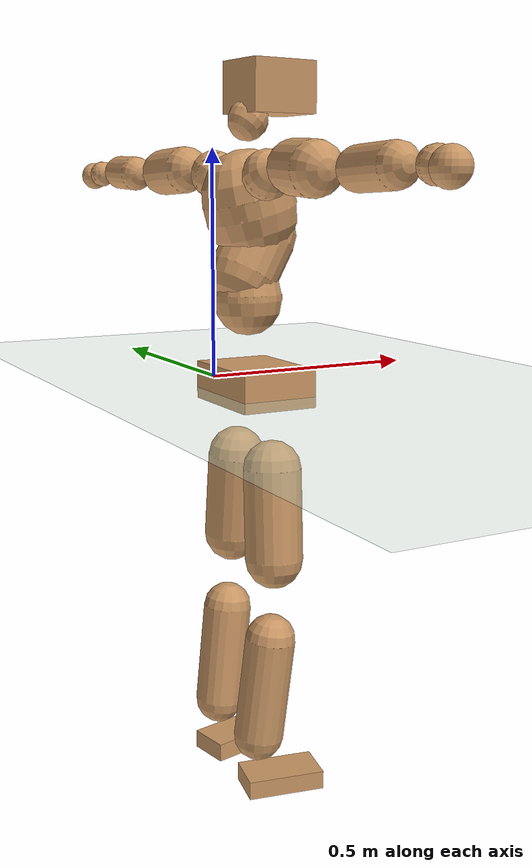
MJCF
<mujoco model="humanoid">
  <compiler coordinate="local" angle="radian"/>
  <default>
    <joint damping="0.0" armature="0.01" stiffness="0.0" limited="true"/>
    <geom conaffinity="1" condim="3" contype="7" margin="0.001" rgba="0.8 0.6 .4 1"/>
  </default>
  <asset>
    <texture type="skybox" builtin="gradient" rgb1=".4 .5 .6" rgb2="0 0 0" width="100" height="100"/>
    <texture builtin="flat" height="1278" mark="cross" markrgb="1 1 1" name="texgeom" random="0.01" rgb1="0.8 0.6 0.4" rgb2="0.8 0.6 0.4" type="cube" width="127"/>
    <texture builtin="checker" height="100" name="texplane" rgb1="0 0 0" rgb2="0.8 0.8 0.8" type="2d" width="100"/>
    <material name="MatPlane" reflectance="0.5" shininess="1" specular="1" texrepeat="60 60" texture="texplane"/>
    <material name="geom" texture="texgeom" texuniform="true"/>
  </asset>
  <worldbody>
    <light cutoff="100" diffuse="1 1 1" dir="-0 0 -1.3" directional="true" exponent="1" pos="0 0 1.3" specular=".1 .1 .1"/>
    <geom conaffinity="1" condim="3" name="floor" pos="0 0 0" rgba="0.8 0.9 0.8 1" size="100 100 .2" type="plane" material="MatPlane"/>
    <body name="Pelvis" pos="-0.0009 -0.2114 0.0278">
      <freejoint name="Pelvis"/>
      <geom type="box" contype="1" conaffinity="1" density="5359.375156" pos="-0.0058 -0.0000 -0.0125" size="0.082 0.1095 0.04" quat="1.0000 0.0000 0.0000 0.0023" name="Pelvis"/>
      <body name="L_Hip" pos="-0.008 0.0714 -0.0896">
        <joint name="L_Hip_x" type="hinge" pos="0 0 0" axis="1 0 0" stiffness="1600" damping="160" armature="0.02" range="-180.0000 180.0000"/>
        <joint name="L_Hip_y" type="hinge" pos="0 0 0" axis="0 1 0" stiffness="1600" damping="160" armature="0.02" range="-180.0000 180.0000"/>
        <joint name="L_Hip_z" type="hinge" pos="0 0 0" axis="0 0 1" stiffness="1600" damping="160" armature="0.02" range="-180.0000 180.0000"/>
        <geom type="capsule" contype="1" conaffinity="1" density="2040.816327" size="0.0613" fromto="-0.0017 0.0077 -0.0909 -0.0050 0.0230 -0.2733" name="L_Hip"/>
        <body name="L_Knee" pos="-0.0067 0.0307 -0.3642">
          <joint name="L_Knee_x" type="hinge" pos="0 0 0" axis="1 0 0" stiffness="1600" damping="160" armature="0.02" range="-180.0000 180.0000"/>
          <joint name="L_Knee_y" type="hinge" pos="0 0 0" axis="0 1 0" stiffness="1600" damping="160" armature="0.02" range="-180.0000 180.0000"/>
          <joint name="L_Knee_z" type="hinge" pos="0 0 0" axis="0 0 1" stiffness="1600" damping="160" armature="0.02" range="-180.0000 180.0000"/>
          <geom type="capsule" contype="1" conaffinity="1" density="1234.567901" size="0.0529" fromto="-0.0093 -0.0025 -0.0823 -0.0342 -0.0091 -0.3010" name="L_Knee"/>
          <body name="L_Ankle" pos="-0.0435 -0.0116 -0.3833">
            <joint name="L_Ankle_x" type="hinge" pos="0 0 0" axis="1 0 0" stiffness="1600" damping="160" armature="0.02" range="-180.0000 180.0000"/>
            <joint name="L_Ankle_y" type="hinge" pos="0 0 0" axis="0 1 0" stiffness="1600" damping="160" armature="0.02" range="-180.0000 180.0000"/>
            <joint name="L_Ankle_z" type="hinge" pos="0 0 0" axis="0 0 1" stiffness="1600" damping="160" armature="0.02" range="-180.0000 180.0000"/>
            <geom type="box" contype="1" conaffinity="1" density="1000" pos="0.0572 0.0117 -0.0273" size="0.082 0.0455 0.0201" quat="0.9949 0.0000 0.0000 0.1005" name="L_Ankle"/>
            <body name="L_Toe" pos="0.1144 0.0233 -0.0546">
              <joint name="L_Toe_x" type="hinge" pos="0 0 0" axis="1 0 0" stiffness="1000" damping="100" armature="0.02" range="-180.0000 180.0000"/>
              <joint name="L_Toe_y" type="hinge" pos="0 0 0" axis="0 1 0" stiffness="1000" damping="100" armature="0.02" range="-180.0000 180.0000"/>
              <joint name="L_Toe_z" type="hinge" pos="0 0 0" axis="0 0 1" stiffness="1000" damping="100" armature="0.02" range="-180.0000 180.0000"/>
              <geom type="box" contype="1" conaffinity="1" density="8384678.682056" pos="0.0000 0.0000 0.0267" size="0.0009 0.0023 0.001" quat="0.9943 0.0000 0.0000 0.1070" name="L_Toe"/>
            </body>
          </body>
        </body>
      </body>
      <body name="R_Hip" pos="-0.0048 -0.069 -0.089">
        <joint name="R_Hip_x" type="hinge" pos="0 0 0" axis="1 0 0" stiffness="1600" damping="160" armature="0.02" range="-180.0000 180.0000"/>
        <joint name="R_Hip_y" type="hinge" pos="0 0 0" axis="0 1 0" stiffness="1600" damping="160" armature="0.02" range="-180.0000 180.0000"/>
        <joint name="R_Hip_z" type="hinge" pos="0 0 0" axis="0 0 1" stiffness="1600" damping="160" armature="0.02" range="-180.0000 180.0000"/>
        <geom type="capsule" contype="1" conaffinity="1" density="2040.816327" size="0.0605" fromto="-0.0022 -0.0088 -0.0901 -0.0070 -0.0274 -0.2806" name="R_Hip"/>
        <body name="R_Knee" pos="-0.0092 -0.0362 -0.3707">
          <joint name="R_Knee_x" type="hinge" pos="0 0 0" axis="1 0 0" stiffness="1600" damping="160" armature="0.02" range="-180.0000 180.0000"/>
          <joint name="R_Knee_y" type="hinge" pos="0 0 0" axis="0 1 0" stiffness="1600" damping="160" armature="0.02" range="-180.0000 180.0000"/>
          <joint name="R_Knee_z" type="hinge" pos="0 0 0" axis="0 0 1" stiffness="1600" damping="160" armature="0.02" range="-180.0000 180.0000"/>
          <geom type="capsule" contype="1" conaffinity="1" density="1234.567901" size="0.0531" fromto="-0.0090 0.0030 -0.0826 -0.0329 0.0110 -0.3011" name="R_Knee"/>
          <body name="R_Ankle" pos="-0.0419 0.014 -0.3836">
            <joint name="R_Ankle_x" type="hinge" pos="0 0 0" axis="1 0 0" stiffness="1600" damping="160" armature="0.02" range="-180.0000 180.0000"/>
            <joint name="R_Ankle_y" type="hinge" pos="0 0 0" axis="0 1 0" stiffness="1600" damping="160" armature="0.02" range="-180.0000 180.0000"/>
            <joint name="R_Ankle_z" type="hinge" pos="0 0 0" axis="0 0 1" stiffness="1600" damping="160" armature="0.02" range="-180.0000 180.0000"/>
            <geom type="box" contype="1" conaffinity="1" density="999.999925" pos="0.0589 -0.0110 -0.0232" size="0.083 0.046 0.0198" quat="0.9957 0.0000 0.0000 -0.0923" name="R_Ankle"/>
            <body name="R_Toe" pos="0.1179 -0.022 -0.0464">
              <joint name="R_Toe_x" type="hinge" pos="0 0 0" axis="1 0 0" stiffness="1000" damping="100" armature="0.02" range="-180.0000 180.0000"/>
              <joint name="R_Toe_y" type="hinge" pos="0 0 0" axis="0 1 0" stiffness="1000" damping="100" armature="0.02" range="-180.0000 180.0000"/>
              <joint name="R_Toe_z" type="hinge" pos="0 0 0" axis="0 0 1" stiffness="1000" damping="100" armature="0.02" range="-180.0000 180.0000"/>
              <geom type="box" contype="1" conaffinity="1" density="8227773.345697" pos="0.0000 0.0000 0.0251" size="0.0009 0.0023 0.0011" quat="0.9966 0.0000 0.0000 -0.0827" name="R_Toe"/>
            </body>
          </body>
        </body>
      </body>
      <body name="Torso" pos="-0.0222 -0.0025 0.1033">
        <joint name="Torso_x" type="hinge" pos="0 0 0" axis="1 0 0" stiffness="2000" damping="200" armature="0.02" range="-180.0000 180.0000"/>
        <joint name="Torso_y" type="hinge" pos="0 0 0" axis="0 1 0" stiffness="2000" damping="200" armature="0.02" range="-180.0000 180.0000"/>
        <joint name="Torso_z" type="hinge" pos="0 0 0" axis="0 0 1" stiffness="2000" damping="200" armature="0.02" range="-180.0000 180.0000"/>
        <geom type="capsule" contype="1" conaffinity="1" density="2040.816327" size="0.0702" fromto="-0.0009 0.0020 0.0702 -0.0008 0.0016 0.0575" name="Torso"/>
        <body name="Spine" pos="-0.0017 0.0036 0.1277">
          <joint name="Spine_x" type="hinge" pos="0 0 0" axis="1 0 0" stiffness="2000" damping="200" armature="0.02" range="-180.0000 180.0000"/>
          <joint name="Spine_y" type="hinge" pos="0 0 0" axis="0 1 0" stiffness="2000" damping="200" armature="0.02" range="-180.0000 180.0000"/>
          <joint name="Spine_z" type="hinge" pos="0 0 0" axis="0 0 1" stiffness="2000" damping="200" armature="0.02" range="-180.0000 180.0000"/>
          <geom type="capsule" contype="1" conaffinity="1" density="2040.816327" size="0.0709" fromto="0.0350 0.0025 0.0616 -0.0071 -0.0005 -0.0126" name="Spine"/>
          <body name="Chest" pos="0.0279 0.002 0.0491">
            <joint name="Chest_x" type="hinge" pos="0 0 0" axis="1 0 0" stiffness="2000" damping="200" armature="0.02" range="-180.0000 180.0000"/>
            <joint name="Chest_y" type="hinge" pos="0 0 0" axis="0 1 0" stiffness="2000" damping="200" armature="0.02" range="-180.0000 180.0000"/>
            <joint name="Chest_z" type="hinge" pos="0 0 0" axis="0 0 1" stiffness="2000" damping="200" armature="0.02" range="-180.0000 180.0000"/>
            <geom type="capsule" contype="1" conaffinity="1" density="2040.816327" size="0.0944" fromto="-0.0264 -0.0008 0.0906 -0.0165 -0.0005 0.0566" name="Chest"/>
            <body name="Neck" pos="-0.0498 -0.002 0.2082">
              <joint name="Neck_x" type="hinge" pos="0 0 0" axis="1 0 0" stiffness="1000" damping="100" armature="0.02" range="-180.0000 180.0000"/>
              <joint name="Neck_y" type="hinge" pos="0 0 0" axis="0 1 0" stiffness="1000" damping="100" armature="0.02" range="-180.0000 180.0000"/>
              <joint name="Neck_z" type="hinge" pos="0 0 0" axis="0 0 1" stiffness="1000" damping="100" armature="0.02" range="-180.0000 180.0000"/>
              <geom type="capsule" contype="1" conaffinity="1" density="1000" size="0.041" fromto="0.0245 0.0017 0.0304 0.0257 0.0018 0.0319" name="Neck"/>
              <body name="Head" pos="0.0502 0.0035 0.0623">
                <joint name="Head_x" type="hinge" pos="0 0 0" axis="1 0 0" stiffness="1000" damping="100" armature="0.02" range="-180.0000 180.0000"/>
                <joint name="Head_y" type="hinge" pos="0 0 0" axis="0 1 0" stiffness="1000" damping="100" armature="0.02" range="-180.0000 180.0000"/>
                <joint name="Head_z" type="hinge" pos="0 0 0" axis="0 0 1" stiffness="1000" damping="100" armature="0.02" range="-180.0000 180.0000"/>
                <geom type="box" contype="1" conaffinity="1" density="2249.999884" pos="0.0261 0.0028 0.0322" size="0.0736 0.0584 0.0513" quat="0.9986 0.0000 0.0000 0.0526" name="Head"/>
              </body>
            </body>
            <body name="L_Thorax" pos="-0.0369 0.0753 0.1178">
              <joint name="L_Thorax_x" type="hinge" pos="0 0 0" axis="1 0 0" stiffness="1000" damping="100" armature="0.02" range="-180.0000 180.0000"/>
              <joint name="L_Thorax_y" type="hinge" pos="0 0 0" axis="0 1 0" stiffness="1000" damping="100" armature="0.02" range="-180.0000 180.0000"/>
              <joint name="L_Thorax_z" type="hinge" pos="0 0 0" axis="0 0 1" stiffness="1000" damping="100" armature="0.02" range="-180.0000 180.0000"/>
              <geom type="capsule" contype="1" conaffinity="1" density="1000" size="0.0496" fromto="-0.0040 0.0463 0.0172 -0.0033 0.0390 0.0145" name="L_Thorax"/>
              <body name="L_Shoulder" pos="-0.0073 0.0853 0.0317">
                <joint name="L_Shoulder_x" type="hinge" pos="0 0 0" axis="1 0 0" stiffness="1000" damping="100" armature="0.02" range="-720.0000 720.0000"/>
                <joint name="L_Shoulder_y" type="hinge" pos="0 0 0" axis="0 1 0" stiffness="1000" damping="100" armature="0.02" range="-720.0000 720.0000"/>
                <joint name="L_Shoulder_z" type="hinge" pos="0 0 0" axis="0 0 1" stiffness="1000" damping="100" armature="0.02" range="-720.0000 720.0000"/>
                <geom type="capsule" contype="1" conaffinity="1" density="1000" size="0.0498" fromto="-0.0087 0.0792 -0.0038 -0.0188 0.1720 -0.0082" name="L_Shoulder"/>
                <body name="L_Elbow" pos="-0.0275 0.2512 -0.012">
                  <joint name="L_Elbow_x" type="hinge" pos="0 0 0" axis="1 0 0" stiffness="1000" damping="100" armature="0.02" range="-720.0000 720.0000"/>
                  <joint name="L_Elbow_y" type="hinge" pos="0 0 0" axis="0 1 0" stiffness="1000" damping="100" armature="0.02" range="-720.0000 720.0000"/>
                  <joint name="L_Elbow_z" type="hinge" pos="0 0 0" axis="0 0 1" stiffness="1000" damping="100" armature="0.02" range="-720.0000 720.0000"/>
                  <geom type="capsule" contype="1" conaffinity="1" density="1000" size="0.0386" fromto="0.0000 0.0686 0.0026 0.0000 0.1694 0.0064" name="L_Elbow"/>
                  <body name="L_Wrist" pos="0 0.238 0.009">
                    <joint name="L_Wrist_x" type="hinge" pos="0 0 0" axis="1 0 0" stiffness="600" damping="60" armature="0.02" range="-180.0000 180.0000"/>
                    <joint name="L_Wrist_y" type="hinge" pos="0 0 0" axis="0 1 0" stiffness="600" damping="60" armature="0.02" range="-180.0000 180.0000"/>
                    <joint name="L_Wrist_z" type="hinge" pos="0 0 0" axis="0 0 1" stiffness="600" damping="60" armature="0.02" range="-180.0000 180.0000"/>
                    <geom type="capsule" contype="1" conaffinity="1" density="1000" size="0.0301" fromto="-0.0064 0.0389 -0.0047 -0.0068 0.0408 -0.0050" name="L_Wrist"/>
                    <body name="L_Hand" pos="-0.0132 0.0797 -0.0097">
                      <joint name="L_Hand_x" type="hinge" pos="0 0 0" axis="1 0 0" stiffness="600" damping="60" armature="0.02" range="-180.0000 180.0000"/>
                      <joint name="L_Hand_y" type="hinge" pos="0 0 0" axis="0 1 0" stiffness="600" damping="60" armature="0.02" range="-180.0000 180.0000"/>
                      <joint name="L_Hand_z" type="hinge" pos="0 0 0" axis="0 0 1" stiffness="600" damping="60" armature="0.02" range="-180.0000 180.0000"/>
                      <geom type="sphere" contype="1" conaffinity="1" density="1000" size="0.0321" pos="0.0000 0.0000 0.0000" name="L_Hand"/>
                    </body>
                  </body>
                </body>
              </body>
            </body>
            <body name="R_Thorax" pos="-0.0418 -0.077 0.1156">
              <joint name="R_Thorax_x" type="hinge" pos="0 0 0" axis="1 0 0" stiffness="1000" damping="100" armature="0.02" range="-180.0000 180.0000"/>
              <joint name="R_Thorax_y" type="hinge" pos="0 0 0" axis="0 1 0" stiffness="1000" damping="100" armature="0.02" range="-180.0000 180.0000"/>
              <joint name="R_Thorax_z" type="hinge" pos="0 0 0" axis="0 0 1" stiffness="1000" damping="100" armature="0.02" range="-180.0000 180.0000"/>
              <geom type="capsule" contype="1" conaffinity="1" density="1000" size="0.0486" fromto="-0.0048 -0.0437 0.0160 -0.0050 -0.0455 0.0167" name="R_Thorax"/>
              <body name="R_Shoulder" pos="-0.0098 -0.0892 0.0328">
                <joint name="R_Shoulder_x" type="hinge" pos="0 0 0" axis="1 0 0" stiffness="1000" damping="100" armature="0.02" range="-720.0000 720.0000"/>
                <joint name="R_Shoulder_y" type="hinge" pos="0 0 0" axis="0 1 0" stiffness="1000" damping="100" armature="0.02" range="-720.0000 720.0000"/>
                <joint name="R_Shoulder_z" type="hinge" pos="0 0 0" axis="0 0 1" stiffness="1000" damping="100" armature="0.02" range="-720.0000 720.0000"/>
                <geom type="capsule" contype="1" conaffinity="1" density="1000" size="0.0512" fromto="-0.0066 -0.0808 -0.0043 -0.0135 -0.1652 -0.0088" name="R_Shoulder"/>
                <body name="R_Elbow" pos="-0.0202 -0.246 -0.0132">
                  <joint name="R_Elbow_x" type="hinge" pos="0 0 0" axis="1 0 0" stiffness="1000" damping="100" armature="0.02" range="-720.0000 720.0000"/>
                  <joint name="R_Elbow_y" type="hinge" pos="0 0 0" axis="0 1 0" stiffness="1000" damping="100" armature="0.02" range="-720.0000 720.0000"/>
                  <joint name="R_Elbow_z" type="hinge" pos="0 0 0" axis="0 0 1" stiffness="1000" damping="100" armature="0.02" range="-720.0000 720.0000"/>
                  <geom type="capsule" contype="1" conaffinity="1" density="1000" size="0.0388" fromto="-0.0010 -0.0687 0.0024 -0.0025 -0.1764 0.0062" name="R_Elbow"/>
                  <body name="R_Wrist" pos="-0.0035 -0.2452 0.0086">
                    <joint name="R_Wrist_x" type="hinge" pos="0 0 0" axis="1 0 0" stiffness="600" damping="60" armature="0.02" range="-180.0000 180.0000"/>
                    <joint name="R_Wrist_y" type="hinge" pos="0 0 0" axis="0 1 0" stiffness="600" damping="60" armature="0.02" range="-180.0000 180.0000"/>
                    <joint name="R_Wrist_z" type="hinge" pos="0 0 0" axis="0 0 1" stiffness="600" damping="60" armature="0.02" range="-180.0000 180.0000"/>
                    <geom type="capsule" contype="1" conaffinity="1" density="1000" size="0.0308" fromto="-0.0051 -0.0392 -0.0035 -0.0053 -0.0412 -0.0037" name="R_Wrist"/>
                    <body name="R_Hand" pos="-0.0104 -0.0804 -0.0072">
                      <joint name="R_Hand_x" type="hinge" pos="0 0 0" axis="1 0 0" stiffness="600" damping="60" armature="0.02" range="-180.0000 180.0000"/>
                      <joint name="R_Hand_y" type="hinge" pos="0 0 0" axis="0 1 0" stiffness="600" damping="60" armature="0.02" range="-180.0000 180.0000"/>
                      <joint name="R_Hand_z" type="hinge" pos="0 0 0" axis="0 0 1" stiffness="600" damping="60" armature="0.02" range="-180.0000 180.0000"/>
                      <geom type="sphere" contype="1" conaffinity="1" density="1000" size="0.0323" pos="0.0000 0.0000 0.0000" name="R_Hand"/>
                    </body>
                  </body>
                </body>
              </body>
            </body>
          </body>
        </body>
      </body>
    </body>
  </worldbody>
  <actuator>
    <motor name="L_Hip_x" joint="L_Hip_x" gear="500"/>
    <motor name="L_Hip_y" joint="L_Hip_y" gear="500"/>
    <motor name="L_Hip_z" joint="L_Hip_z" gear="500"/>
    <motor name="L_Knee_x" joint="L_Knee_x" gear="500"/>
    <motor name="L_Knee_y" joint="L_Knee_y" gear="500"/>
    <motor name="L_Knee_z" joint="L_Knee_z" gear="500"/>
    <motor name="L_Ankle_x" joint="L_Ankle_x" gear="500"/>
    <motor name="L_Ankle_y" joint="L_Ankle_y" gear="500"/>
    <motor name="L_Ankle_z" joint="L_Ankle_z" gear="500"/>
    <motor name="L_Toe_x" joint="L_Toe_x" gear="500"/>
    <motor name="L_Toe_y" joint="L_Toe_y" gear="500"/>
    <motor name="L_Toe_z" joint="L_Toe_z" gear="500"/>
    <motor name="R_Hip_x" joint="R_Hip_x" gear="500"/>
    <motor name="R_Hip_y" joint="R_Hip_y" gear="500"/>
    <motor name="R_Hip_z" joint="R_Hip_z" gear="500"/>
    <motor name="R_Knee_x" joint="R_Knee_x" gear="500"/>
    <motor name="R_Knee_y" joint="R_Knee_y" gear="500"/>
    <motor name="R_Knee_z" joint="R_Knee_z" gear="500"/>
    <motor name="R_Ankle_x" joint="R_Ankle_x" gear="500"/>
    <motor name="R_Ankle_y" joint="R_Ankle_y" gear="500"/>
    <motor name="R_Ankle_z" joint="R_Ankle_z" gear="500"/>
    <motor name="R_Toe_x" joint="R_Toe_x" gear="500"/>
    <motor name="R_Toe_y" joint="R_Toe_y" gear="500"/>
    <motor name="R_Toe_z" joint="R_Toe_z" gear="500"/>
    <motor name="Torso_x" joint="Torso_x" gear="500"/>
    <motor name="Torso_y" joint="Torso_y" gear="500"/>
    <motor name="Torso_z" joint="Torso_z" gear="500"/>
    <motor name="Spine_x" joint="Spine_x" gear="500"/>
    <motor name="Spine_y" joint="Spine_y" gear="500"/>
    <motor name="Spine_z" joint="Spine_z" gear="500"/>
    <motor name="Chest_x" joint="Chest_x" gear="500"/>
    <motor name="Chest_y" joint="Chest_y" gear="500"/>
    <motor name="Chest_z" joint="Chest_z" gear="500"/>
    <motor name="Neck_x" joint="Neck_x" gear="500"/>
    <motor name="Neck_y" joint="Neck_y" gear="500"/>
    <motor name="Neck_z" joint="Neck_z" gear="500"/>
    <motor name="Head_x" joint="Head_x" gear="500"/>
    <motor name="Head_y" joint="Head_y" gear="500"/>
    <motor name="Head_z" joint="Head_z" gear="500"/>
    <motor name="L_Thorax_x" joint="L_Thorax_x" gear="500"/>
    <motor name="L_Thorax_y" joint="L_Thorax_y" gear="500"/>
    <motor name="L_Thorax_z" joint="L_Thorax_z" gear="500"/>
    <motor name="L_Shoulder_x" joint="L_Shoulder_x" gear="500"/>
    <motor name="L_Shoulder_y" joint="L_Shoulder_y" gear="500"/>
    <motor name="L_Shoulder_z" joint="L_Shoulder_z" gear="500"/>
    <motor name="L_Elbow_x" joint="L_Elbow_x" gear="500"/>
    <motor name="L_Elbow_y" joint="L_Elbow_y" gear="500"/>
    <motor name="L_Elbow_z" joint="L_Elbow_z" gear="500"/>
    <motor name="L_Wrist_x" joint="L_Wrist_x" gear="500"/>
    <motor name="L_Wrist_y" joint="L_Wrist_y" gear="500"/>
    <motor name="L_Wrist_z" joint="L_Wrist_z" gear="500"/>
    <motor name="L_Hand_x" joint="L_Hand_x" gear="500"/>
    <motor name="L_Hand_y" joint="L_Hand_y" gear="500"/>
    <motor name="L_Hand_z" joint="L_Hand_z" gear="500"/>
    <motor name="R_Thorax_x" joint="R_Thorax_x" gear="500"/>
    <motor name="R_Thorax_y" joint="R_Thorax_y" gear="500"/>
    <motor name="R_Thorax_z" joint="R_Thorax_z" gear="500"/>
    <motor name="R_Shoulder_x" joint="R_Shoulder_x" gear="500"/>
    <motor name="R_Shoulder_y" joint="R_Shoulder_y" gear="500"/>
    <motor name="R_Shoulder_z" joint="R_Shoulder_z" gear="500"/>
    <motor name="R_Elbow_x" joint="R_Elbow_x" gear="500"/>
    <motor name="R_Elbow_y" joint="R_Elbow_y" gear="500"/>
    <motor name="R_Elbow_z" joint="R_Elbow_z" gear="500"/>
    <motor name="R_Wrist_x" joint="R_Wrist_x" gear="500"/>
    <motor name="R_Wrist_y" joint="R_Wrist_y" gear="500"/>
    <motor name="R_Wrist_z" joint="R_Wrist_z" gear="500"/>
    <motor name="R_Hand_x" joint="R_Hand_x" gear="500"/>
    <motor name="R_Hand_y" joint="R_Hand_y" gear="500"/>
    <motor name="R_Hand_z" joint="R_Hand_z" gear="500"/>
  </actuator>
  <contact>
    <exclude body1="Torso" body2="Chest"/>
    <exclude body1="Head" body2="Chest"/>
    <exclude body1="R_Knee" body2="R_Toe"/>
    <exclude body1="R_Knee" body2="L_Ankle"/>
    <exclude body1="R_Knee" body2="L_Toe"/>
    <exclude body1="L_Knee" body2="L_Toe"/>
    <exclude body1="L_Knee" body2="R_Ankle"/>
    <exclude body1="L_Knee" body2="R_Toe"/>
    <exclude body1="L_Shoulder" body2="Chest"/>
    <exclude body1="R_Shoulder" body2="Chest"/>
  </contact>
  <sensor/>
  <size njmax="700" nconmax="700"/>
</mujoco>
